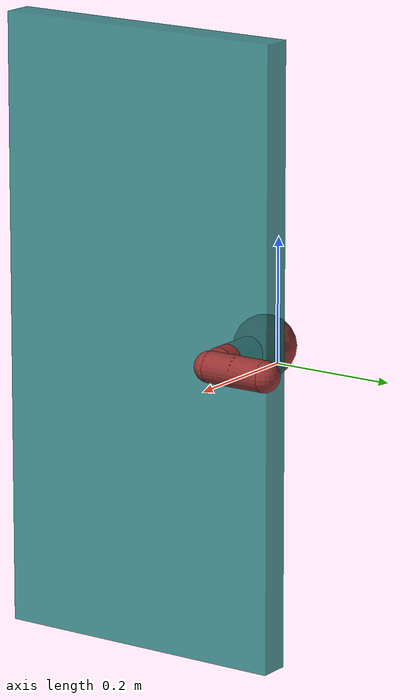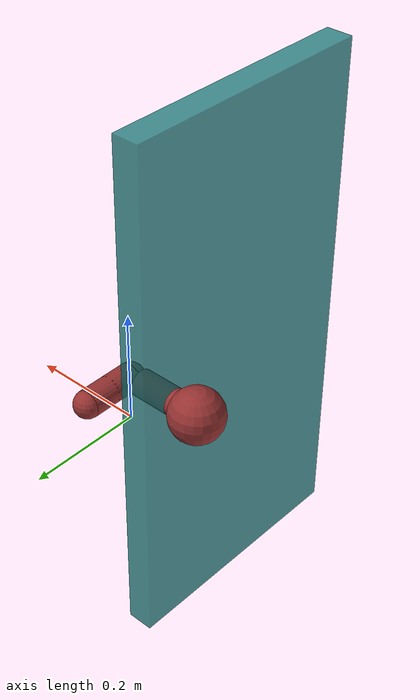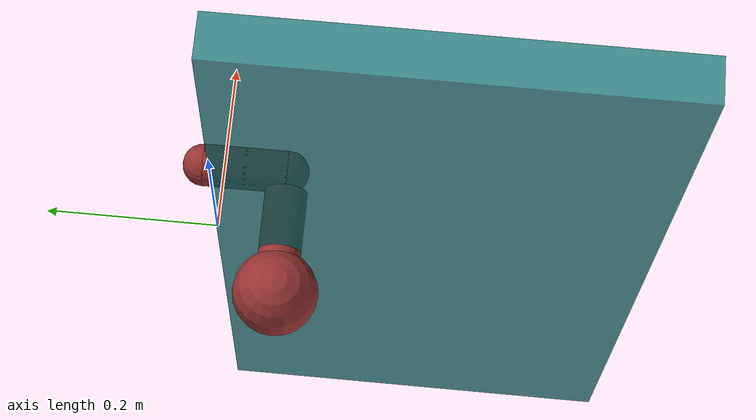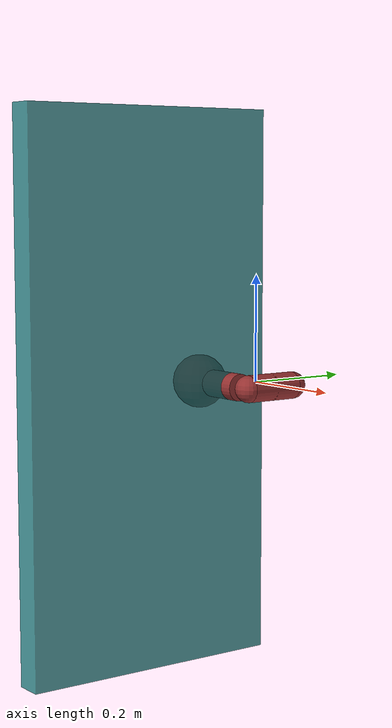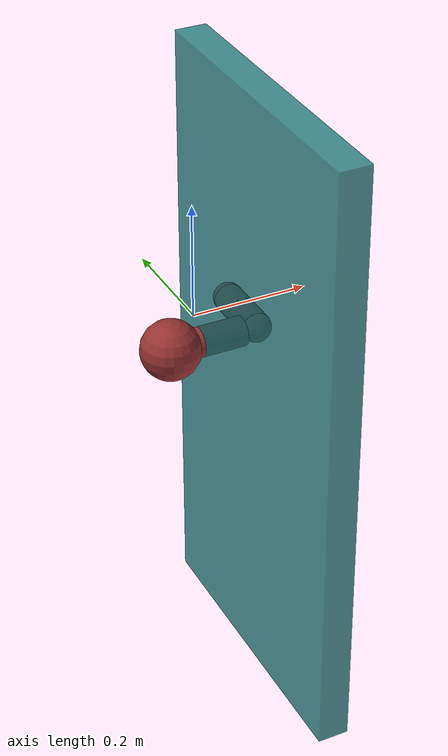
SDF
<?xml version="1.0"?>
<sdf version="1.7">

  <!-- world->ghost_body_y->ghost_body_z_sphere-->
  <model name="door">
    <!-- The model for a solid box of uniform density. -->

    <joint name="z_rotation" type="revolute">
      <parent>world</parent>
      <child>door</child>
      <axis>
        <xyz>0 0 1</xyz>
        <!-- Drake attaches an actuator to all joints with a non-zero effort
             limit. We do not want an actuator for this joint. -->
        <limit>
          <effort>0</effort>
        </limit>
      </axis>
    </joint>

    <link name="door">
      <pose>0 -0.5 0 0 0 0</pose>
      <inertial>
        <mass>0.1</mass>
        <inertia>
          <ixx>0.010334166666666667</ixx>
          <ixy>0</ixy>
          <ixz>0</ixz>
          <iyy>0.008354166666666666</iyy>
          <iyz>0</iyz>
          <izz>0.0020216666666666664</izz>
        </inertia>
      </inertial>

      <visual name="box_visual">
        <pose>0 0.25 0 0 0 0 </pose>
        <geometry>
          <box>
            <size>0.05 0.49 1.0</size>
          </box>
        </geometry>
        <material>
          <diffuse>0.1 0.5 0.5 0.8</diffuse>
        </material>
      </visual>

      <collision name="collision">
        <pose>0 0.25 0 0 0 0 </pose>
        <geometry>
          <box>
            <size>0.05 0.49 1.0</size>
          </box>
        </geometry>
        <surface>
          <friction>
            <ode>
              <mu>0.5</mu>
              <mu2>0.5</mu2>
            </ode>
          </friction>
        </surface>
      </collision>
    </link>

    <joint name="x_rotation" type="revolute">
      <parent>door</parent>
      <child>sphere</child>
      <axis>
        <xyz>1 0 0</xyz>
        <!-- Drake attaches an actuator to all joints with a non-zero effort
             limit. We do not want an actuator for this joint. -->
        <limit>
          <effort>0</effort>
        </limit>
      </axis>
    </joint>

    <link name="sphere">
      <pose>-0.075 -0.075 0 0 0 0</pose>
      <inertial>
        <mass>0.3</mass>
        <inertia>
          <ixx>0.001</ixx>
          <ixy>0</ixy>
          <ixz>0</ixz>
          <iyy>0.001</iyy>
          <iyz>0</iyz>
          <izz>0.001</izz>
        </inertia>
      </inertial>

      <visual name="visual">
        <geometry>
          <sphere>
            <radius>0.05</radius>
          </sphere>
        </geometry>
        <material>
          <diffuse>0.6 0.2 0.2 0.9</diffuse>
        </material>
      </visual>

      <visual name="visual_cylinder">
        <pose>0.075 0 0 0 1.57079632 0 </pose>
        <geometry>
          <cylinder>
            <radius>0.025</radius>
            <length>0.1</length>
          </cylinder>
        </geometry>
        <material>
          <diffuse>0.6 0.2 0.2 0.9</diffuse>
        </material>
      </visual>

      <visual name="visual_hinge">
        <pose>0.15 0 0 0 0 0 </pose>
        <geometry>
          <sphere>
            <radius>0.025</radius>
          </sphere>
        </geometry>
        <material>
          <diffuse>0.6 0.2 0.2 0.9</diffuse>
        </material>
      </visual>

      <visual name="visual_hinge1">
        <pose>0.15 0.05 0 0 0 0 </pose>
        <geometry>
          <sphere>
            <radius>0.025</radius>
          </sphere>
        </geometry>
        <material>
          <diffuse>0.6 0.2 0.2 0.9</diffuse>
        </material>
      </visual>

      <visual name="visual_hinge2">
        <pose>0.15 0.1 0 0 0 0 </pose>
        <geometry>
          <sphere>
            <radius>0.025</radius>
          </sphere>
        </geometry>
        <material>
          <diffuse>0.6 0.2 0.2 0.9</diffuse>
        </material>
      </visual>

      <visual name="visual_hinge_cylinder">
        <pose>0.15 0.05 0 1.57079632 0 0 </pose>
        <geometry>
          <cylinder>
            <radius>0.025</radius>
            <length>0.1</length>
          </cylinder>
        </geometry>
        <material>
          <diffuse>0.6 0.2 0.2 0.9</diffuse>
        </material>
      </visual>

      <collision name="collision">
        <geometry>
          <sphere>
            <radius>0.05</radius>
          </sphere>
        </geometry>
        <surface>
          <friction>
            <ode>
              <mu>1.0</mu>
              <mu2>1.0</mu2>
            </ode>
          </friction>
        </surface>
      </collision>

      <collision name="collision_hinge1">
        <pose>0.15 0 0 0 0 0 </pose>
        <geometry>
          <sphere>
            <radius>0.025</radius>
          </sphere>
        </geometry>
        <surface>
          <friction>
            <ode>
              <mu>1.0</mu>
              <mu2>1.0</mu2>
            </ode>
          </friction>
        </surface>
      </collision>

      <collision name="collision_hinge2">
        <pose>0.15 0.05 0 0 0 0 </pose>
        <geometry>
          <sphere>
            <radius>0.025</radius>
          </sphere>
        </geometry>
        <surface>
          <friction>
            <ode>
              <mu>1.0</mu>
              <mu2>1.0</mu2>
            </ode>
          </friction>
        </surface>
      </collision>

      <collision name="collision_hinge3">
        <pose>0.15 0.1 0 0 0 0 </pose>
        <geometry>
          <sphere>
            <radius>0.025</radius>
          </sphere>
        </geometry>
        <surface>
          <friction>
            <ode>
              <mu>1.0</mu>
              <mu2>1.0</mu2>
            </ode>
          </friction>
        </surface>
      </collision>

    </link>

  </model>
</sdf>
